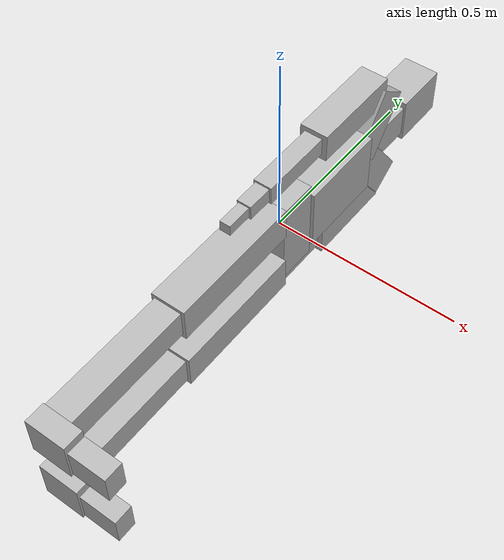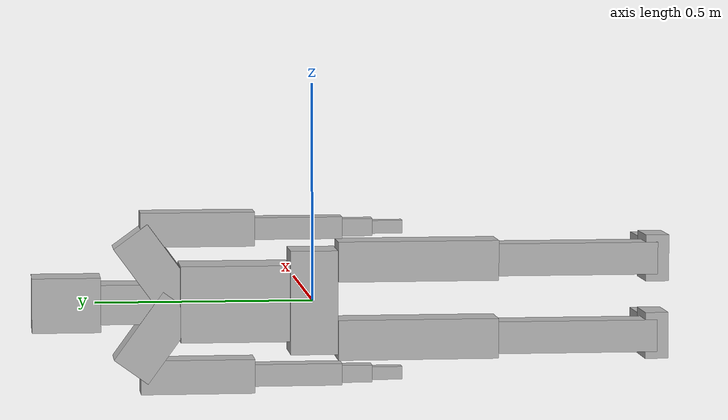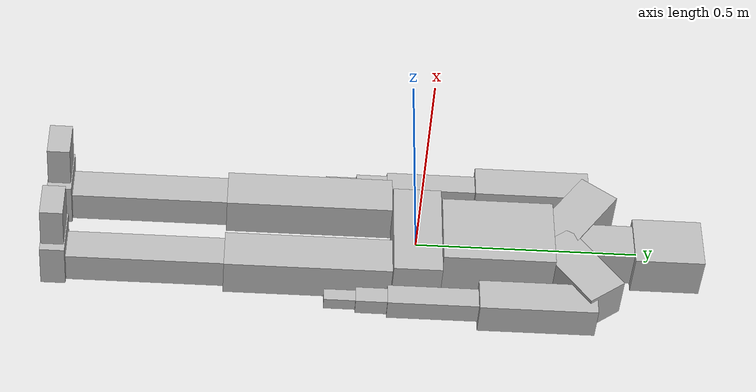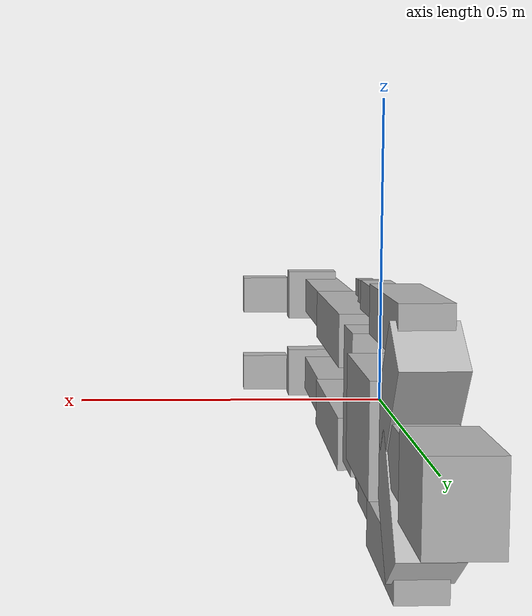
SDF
<?xml version="1.0" ?>
<sdf version="1.4">

    <model name="human_model">
        <link name="h_pelvis">
            <self_collide>true</self_collide>
            <pose>0 0 0 0 0 0</pose>
            <inertial>
                <mass>5.6154</mass>
            </inertial>
            <visual name="visual">
                <pose>0.0 0 0.0 0 0 0</pose>
                <geometry>
                    <box>
                        <size>0.1088 0.1088 0.23936</size>
                    </box>
                </geometry>
            </visual>
            <collision name="collision">
                <pose>0.0 0 0.0 0 0 0</pose>
                <geometry>
                    <box>
                        <size>0.1088 0.1088 0.23936</size>
                    </box>
                </geometry>
            </collision>
        </link>

        <!-- Left Leg -->
        <link name="h_thigh_left">
            <self_collide>true</self_collide>
            <pose>0.01649408 -0.05774016 -0.09072832 0.0 0.0 0.0</pose>
            <inertial>
                <mass>6.5709</mass>
            </inertial>
            <visual name="visual">
                <pose>0.0 -0.18605 0.0 0.0 0.0 0.0</pose>
                <geometry>
                    <box>
                        <size>0.093025 0.3721 0.093025</size>
                    </box>
                </geometry>
            </visual>
            <collision name="collision">
                <pose>0.0 -0.18605 0.0 0.0 0.0 0.0</pose>
                <geometry>
                    <box>
                        <size>0.093025 0.3721 0.093025</size>
                    </box>
                </geometry>
            </collision>
        </link>

        <link name="h_shin_left">
            <self_collide>true</self_collide>
            <pose>0.01649408 -0.42984016 -0.09072832 0.0 0.0 0.0</pose>
            <inertial>
                <mass>1.7738</mass>
            </inertial>
            <visual name="visual">
                <pose>0.0 -0.18685 0.0 0.0 0.0 0.0</pose>
                <geometry>
                    <box>
                        <size>0.07474 0.3737 0.07474</size>
                    </box>
                </geometry>
            </visual>
            <collision name="collision">
                <pose>0.0 -0.18685 0.0 0.0 0.0 0.0</pose>
                <geometry>
                    <box>
                        <size>0.07474 0.3737 0.07474</size>
                    </box>
                </geometry>
            </collision>
        </link>

        <link name="h_heel_left">
            <self_collide>true</self_collide>
            <pose>0.01649408 -0.80354016 -0.09072832 0.0 0.0 0.0</pose>
            <inertial>
                <mass>0.5831</mass>
            </inertial>
            <visual name="visual">
                <pose>0.0216 0.0 0.0 0.0 0.0 0.0</pose>
                <geometry>
                    <box>
                        <size>0.1080 0.0540 0.1080</size>
                    </box>
                </geometry>
            </visual>
            <collision name="collision">
                <pose>0.0216 0.0 0.0 0.0 0.0 0.0</pose>
                <geometry>
                    <box>
                        <size>0.1080 0.0540 0.1080</size>
                    </box>
                </geometry>
            </collision>
        </link>

        <link name="h_toe_left">
            <self_collide>true</self_collide>
            <pose>0.12649408 -0.80354016 -0.09072832 0.0 0.0 0.0</pose>
            <inertial>
                <mass>0.50</mass>
            </inertial>
            <visual name="visual">
                <pose>0.02 0.0 0.0 0.0 0.0 0.0</pose>
                <geometry>
                    <box>
                        <size>0.1000 0.0500 0.0800</size>
                    </box>
                </geometry>
            </visual>
            <collision name="collision">
                <pose>0.02 0.0 0.0 0.0 0.0 0.0</pose>
                <geometry>
                    <box>
                        <size>0.1000 0.0500 0.0800</size>
                    </box>
                </geometry>
            </collision>
        </link>

        <!-- Right Leg -->
        <link name="h_thigh_right">
            <self_collide>true</self_collide>
            <pose>0.01649408 -0.05774016 0.09072832 0.0 0.0 0.0</pose>
            <inertial>
                <mass>6.5709</mass>
            </inertial>
            <visual name="visual">
                <pose>0.0 -0.18605 0.0 0.0 0.0 0.0</pose>
                <geometry>
                    <box>
                        <size>0.093025 0.3721 0.093025</size>
                    </box>
                </geometry>
            </visual>
            <collision name="collision">
                <pose>0.0 -0.18605 0.0 0.0 0.0 0.0</pose>
                <geometry>
                    <box>
                        <size>0.093025 0.3721 0.093025</size>
                    </box>
                </geometry>
            </collision>
        </link>

        <link name="h_shin_right">
            <self_collide>true</self_collide>
            <pose>0.01649408 -0.42984016 0.09072832 0.0 0.0 0.0</pose>
            <inertial>
                <mass>1.7738</mass>
            </inertial>
            <visual name="visual">
                <pose>0.0 -0.18685 0.0 0.0 0.0 0.0</pose>
                <geometry>
                    <box>
                        <size>0.07474 0.3737 0.07474</size>
                    </box>
                </geometry>
            </visual>
            <collision name="collision">
                <pose>0.0 -0.18685 0.0 0.0 0.0 0.0</pose>
                <geometry>
                    <box>
                        <size>0.07474 0.3737 0.07474</size>
                    </box>
                </geometry>
            </collision>
        </link>

        <link name="h_heel_right">
            <self_collide>true</self_collide>
            <pose>0.01649408 -0.80354016 0.09072832 0.0 0.0 0.0</pose>
            <inertial>
                <mass>0.5831</mass>
            </inertial>
            <visual name="visual">
                <pose>0.0216 0.0 0.0 0.0 0.0 0.0</pose>
                <geometry>
                    <box>
                        <size>0.1080 0.0540 0.1080</size>
                    </box>
                </geometry>
            </visual>
            <collision name="collision">
                <pose>0.0216 0.0 0.0 0.0 0.0 0.0</pose>
                <geometry>
                    <box>
                        <size>0.1080 0.0540 0.1080</size>
                    </box>
                </geometry>
            </collision>
        </link>

        <link name="h_toe_right">
            <self_collide>true</self_collide>
            <pose>0.12649408 -0.80354016 0.09072832 0.0 0.0 0.0</pose>
            <inertial>
                <mass>0.50</mass>
            </inertial>
            <visual name="visual">
                <pose>0.02 0.0 0.0 0.0 0.0 0.0</pose>
                <geometry>
                    <box>
                        <size>0.1000 0.0500 0.0800</size>
                    </box>
                </geometry>
            </visual>
            <collision name="collision">
                <pose>0.02 0.0 0.0 0.0 0.0 0.0</pose>
                <geometry>
                    <box>
                        <size>0.1000 0.0500 0.0800</size>
                    </box>
                </geometry>
            </collision>
        </link>

        <!-- Upper link -->
        <link name="h_abdomen">
            <self_collide>true</self_collide>
            <pose>0.0 0.0562 0.0 0.0 0.0 0.0</pose>
            <inertial>
                <mass>4.1846</mass>
            </inertial>
            <visual name="visual">
                <pose>0.0 0.12535 0.0 0.0 0.0 0.0</pose>
                <geometry>
                    <box>
                        <size>0.12535 0.2507 0.17549</size>
                    </box>
                </geometry>
            </visual>
            <collision name="collision">
                <pose>0.0 0.12535 0.0 0.0 0.0 0.0</pose>
                <geometry>
                    <box>
                        <size>0.12535 0.2507 0.17549</size>
                    </box>
                </geometry>
            </collision>
        </link>

        <link name="h_spine">
            <self_collide>true</self_collide>
            <pose>0.0 0.3069 0.0 0.0 0.0 0.0</pose>
            <inertial>
                <mass>4.8608</mass>
            </inertial>
            <visual name="visual">
                <pose>0.0 0.0908 0.0 0.0 0.0 0.0</pose>
                <geometry>
                    <box>
                        <size>0.0908 0.1816 0.0908</size>
                    </box>
                </geometry>
            </visual>
            <collision name="collision">
                <pose>0.0 0.0908 0.0 0.0 0.0 0.0</pose>
                <geometry>
                    <box>
                        <size>0.0908 0.1816 0.0908</size>
                    </box>
                </geometry>
            </collision>
        </link>

        <link name="h_head">
            <self_collide>true</self_collide>
            <pose>0.0 0.4885 0.0 0.0 0.0 0.0</pose>
            <inertial>
                <mass>3.92</mass>
            </inertial>
            <visual name="visual">
                <pose>0.0 0.07825 0.0 0.0 0.0 0.0</pose>
                <geometry>
                    <box>
                        <size>0.101725 0.1565 0.1252</size>
                    </box>
                </geometry>
            </visual>
            <collision name="collision">
                <pose>0.0 0.07825 0.0 0.0 0.0 0.0</pose>
                <geometry>
                    <box>
                        <size>0.101725 0.1565 0.1252</size>
                    </box>
                </geometry>
            </collision>
        </link>

        <!-- Left Arm -->
        <link name="h_scapula_left">
            <self_collide>true</self_collide>
            <pose>0.0 0.3069 0.0 -0.9423 0.0 0.0</pose>
            <inertial>
                <mass>2.6264</mass>
            </inertial>
            <visual name="visual">
                <pose>0.0 0.09615 0.0 0.0 0.0 0.0</pose>
                <geometry>
                    <box>
                        <size>0.09615 0.1923 0.09615</size>
                    </box>
                </geometry>
            </visual>
            <collision name="collision">
                <pose>0.0 0.09615 0.0 0.0 0.0 0.0</pose>
                <geometry>
                    <box>
                        <size>0.09615 0.1923 0.09615</size>
                    </box>
                </geometry>
            </collision>
        </link>

        <link name="h_bicep_left_midjoint">
            <self_collide>true</self_collide>
            <pose>0.0 0.397146 -0.169809 0.0 0.0 0.0</pose>
            <collision name="collision">
                <pose>0.0 -0.1308 0.0 0.0 0.0 0.0</pose>
                <geometry>
                    <box>
                        <size>0.07848 0.2616 0.07848</size>
                    </box>
                </geometry>
            </collision>
        </link>

        <link name="h_bicep_left">
            <self_collide>true</self_collide>
            <pose>0.0 0.397146 -0.169809 0.0 0.0 0.0</pose>
            <inertial>
                <mass>1.6219</mass>
            </inertial>
            <visual name="visual">
                <pose>0.0 -0.1308 0.0 0.0 0.0 0.0</pose>
                <geometry>
                    <box>
                        <size>0.07848 0.2616 0.07848</size>
                    </box>
                </geometry>
            </visual>
            <collision name="collision">
                <pose>0.0 -0.1308 0.0 0.0 0.0 0.0</pose>
                <geometry>
                    <box>
                        <size>0.07848 0.2616 0.07848</size>
                    </box>
                </geometry>
            </collision>
        </link>

        <link name="h_forearm_left">
            <self_collide>true</self_collide>
            <pose>0.0 0.135546 -0.169809 0.0 0.0 0.0</pose>
            <inertial>
                <mass>0.6909</mass>
            </inertial>
            <visual name="visual">
                <pose>0.0 -0.1012 0.0 0.0 0.0 0.0</pose>
                <geometry>
                    <box>
                        <size>0.0506 0.2024 0.0506</size>
                    </box>
                </geometry>
            </visual>
            <collision name="collision">
                <pose>0.0 -0.1012 0.0 0.0 0.0 0.0</pose>
                <geometry>
                    <box>
                        <size>0.0506 0.2024 0.0506</size>
                    </box>
                </geometry>
            </collision>
        </link>

        <link name="h_hand_left">
            <self_collide>true</self_collide>
            <pose>0.0 -0.066854 -0.169809 0.0 0.0 0.0</pose>
            <inertial>
                <mass>0.175</mass>
            </inertial>
            <visual name="visual">
                <pose>0.0 -0.035 0.0 0.0 0.0 0.0</pose>
                <geometry>
                    <box>
                        <size>0.04 0.07 0.04</size>
                    </box>
                </geometry>
            </visual>
            <collision name="collision">
                <pose>0.0 -0.035 0.0 0.0 0.0 0.0</pose>
                <geometry>
                    <box>
                        <size>0.04 0.07 0.04</size>
                    </box>
                </geometry>
            </collision>
        </link>

        <link name="h_hand_left2">
            <self_collide>true</self_collide>
            <pose>0.0 -0.137 -0.169809 0.0 0.0 0.0</pose>
            <inertial>
                <mass>0.12</mass>
            </inertial>
            <visual name="visual">
                <pose>0.0 -0.035 0.0 0.0 0.0 0.0</pose>
                <geometry>
                    <box>
                        <size>0.03 0.07 0.03</size>
                    </box>
                </geometry>
            </visual>
            <collision name="collision">
                <pose>0.0 -0.035 0.0 0.0 0.0 0.0</pose>
                <geometry>
                    <box>
                        <size>0.03 0.07 0.03</size>
                    </box>
                </geometry>
            </collision>
        </link>

        <!-- Right Arm -->
        <link name="h_scapula_right">
            <self_collide>true</self_collide>
            <pose>0.0 0.3069 0.0 0.9423 0.0 0.0</pose>
            <inertial>
                <mass>2.6264</mass>
            </inertial>
            <visual name="visual">
                <pose>0.0 0.09615 0.0 0.0 0.0 0.0</pose>
                <geometry>
                    <box>
                        <size>0.09615 0.1923 0.09615</size>
                    </box>
                </geometry>
            </visual>
            <collision name="collision">
                <pose>0.0 0.09615 0.0 0.0 0.0 0.0</pose>
                <geometry>
                    <box>
                        <size>0.09615 0.1923 0.09615</size>
                    </box>
                </geometry>
            </collision>
        </link>

        <link name="h_bicep_right_midjoint">
            <self_collide>true</self_collide>
            <pose>0.0 0.397146 0.169809 0.0 0.0 0.0</pose>
            <collision name="collision">
                <pose>0.0 -0.1308 0.0 0.0 0.0 0.0</pose>
                <geometry>
                    <box>
                        <size>0.07848 0.2616 0.07848</size>
                    </box>
                </geometry>
            </collision>
        </link>

        <link name="h_bicep_right">
            <self_collide>true</self_collide>
            <pose>0.0 0.397146 0.169809 0.0 0.0 0.0</pose>
            <inertial>
                <mass>1.6219</mass>
            </inertial>
            <visual name="visual">
                <pose>0.0 -0.1308 0.0 0.0 0.0 0.0</pose>
                <geometry>
                    <box>
                        <size>0.07848 0.2616 0.07848</size>
                    </box>
                </geometry>
            </visual>
            <collision name="collision">
                <pose>0.0 -0.1308 0.0 0.0 0.0 0.0</pose>
                <geometry>
                    <box>
                        <size>0.07848 0.2616 0.07848</size>
                    </box>
                </geometry>
            </collision>
        </link>

        <link name="h_forearm_right">
            <self_collide>true</self_collide>
            <pose>0.0 0.135546 0.169809 0.0 0.0 0.0</pose>
            <inertial>
                <mass>0.6909</mass>
            </inertial>
            <visual name="visual">
                <pose>0.0 -0.1012 0.0 0.0 0.0 0.0</pose>
                <geometry>
                    <box>
                        <size>0.0506 0.2024 0.0506</size>
                    </box>
                </geometry>
            </visual>
            <collision name="collision">
                <pose>0.0 -0.1012 0.0 0.0 0.0 0.0</pose>
                <geometry>
                    <box>
                        <size>0.0506 0.2024 0.0506</size>
                    </box>
                </geometry>
            </collision>
        </link>

        <link name="h_hand_right">
            <self_collide>true</self_collide>
            <pose>0.0 -0.066854 0.169809 0.0 0.0 0.0</pose>
            <inertial>
                <mass>0.175</mass>
            </inertial>
            <visual name="visual">
                <pose>0.0 -0.035 0.0 0.0 0.0 0.0</pose>
                <geometry>
                    <box>
                        <size>0.04 0.07 0.04</size>
                    </box>
                </geometry>
            </visual>
            <collision name="collision">
                <pose>0.0 -0.035 0.0 0.0 0.0 0.0</pose>
                <geometry>
                    <box>
                        <size>0.04 0.07 0.04</size>
                    </box>
                </geometry>
            </collision>
        </link>

        <link name="h_hand_right2">
            <self_collide>true</self_collide>
            <pose>0.0 -0.137 0.169809 0.0 0.0 0.0</pose>
            <inertial>
                <mass>0.12</mass>
            </inertial>
            <visual name="visual">
                <pose>0.0 -0.035 0.0 0.0 0.0 0.0</pose>
                <geometry>
                    <box>
                        <size>0.03 0.07 0.03</size>
                    </box>
                </geometry>
            </visual>
            <collision name="collision">
                <pose>0.0 -0.035 0.0 0.0 0.0 0.0</pose>
                <geometry>
                    <box>
                        <size>0.03 0.07 0.03</size>
                    </box>
                </geometry>
            </collision>
        </link>

        <!-- JOINT: Pelvis -->
        <joint type="ball" name="j_pelvis">
            <parent>world</parent>
            <child>h_head</child>
        </joint>

        <!-- JOINT: Left Leg -->
        <joint type="ball" name="j_thigh_left">
            <pose>0.0 0.0 0.0 0.0 0.0 0.0</pose>
            <parent>h_pelvis</parent>
            <child>h_thigh_left</child>

        </joint>

        <joint type="revolute" name="j_shin_left">
            <pose>0.0 0.0 0.0 0.0 0.0 0.0</pose>
            <parent>h_thigh_left</parent>
            <child>h_shin_left</child>
            <axis>
                <xyz>0.0 0.0 1.0</xyz>
                <limit>
                    <lower>-2.6416</lower>
                    <upper>0</upper>
                </limit>
            </axis>
        </joint>

        <joint type="revolute2" name="j_heel_left">
            <pose>0.0 0.0 0.0 0.0 0.0 0.0</pose>
            <parent>h_shin_left</parent>
            <child>h_heel_left</child>
            <axis>
                <xyz>0.0 0.0 1.0</xyz>
                <limit>
                    <lower>-1.136</lower>
                    <upper>0.350</upper>
                </limit>
            </axis>
            <axis2>
                <xyz>0.0 1.0 0.0</xyz>
                <limit>
                    <lower>-0.2854</lower>
                    <upper>0.3854</upper>
                </limit>
            </axis2>
        </joint>

        <joint type="revolute" name="j_toe_left">
            <pose>0.0 0.0 0.0 0.0 0.0 0.0</pose>
            <parent>h_heel_left</parent>
            <child>h_toe_left</child>
            <axis>
                <xyz>0.0 0.0 1.0</xyz>
                <limit>
                    <lower>-0.4236</lower>
                    <upper>0.5536</upper>
                </limit>
            </axis>
        </joint>

        <!-- JOINT: Right Leg -->
        <joint type="ball" name="j_thigh_right">
            <pose>0.0 0.0 0.0 0.0 0.0 0.0</pose>
            <parent>h_pelvis</parent>
            <child>h_thigh_right</child>
        </joint>

        <joint type="revolute" name="j_shin_right">
            <pose>0.0 0.0 0.0 0.0 0.0 0.0</pose>
            <parent>h_thigh_right</parent>
            <child>h_shin_right</child>
            <axis>
                <xyz>0.0 0.0 1.0</xyz>
                <limit>
                    <lower>-2.6416</lower>
                    <upper>0</upper>
                </limit>
            </axis>
        </joint>

        <joint type="revolute2" name="j_heel_right">
            <pose>0.0 0.0 0.0 0.0 0.0 0.0</pose>
            <parent>h_shin_right</parent>
            <child>h_heel_right</child>
            <axis>
                <xyz>0.0 0.0 1.0</xyz>
                <limit>
                    <lower>-1.136</lower>
                    <upper>0.350</upper>
                </limit>
            </axis>
            <axis2>
                <xyz>0.0 1.0 0.0</xyz>
                <limit>
                    <lower>-0.2854</lower>
                    <upper>0.3854</upper>
                </limit>
            </axis2>
        </joint>

        <joint type="revolute" name="j_toe_right">
            <pose>0.0 0.0 0.0 0.0 0.0 0.0</pose>
            <parent>h_heel_right</parent>
            <child>h_toe_right</child>
            <axis>
                <xyz>0.0 0.0 1.0</xyz>
                <limit>
                    <lower>-0.4236</lower>
                    <upper>0.5536</upper>
                </limit>
            </axis>
        </joint>

        <joint type="revolute2" name="j_abdomen">
            <pose>0.0 0.0 0.0 0.0 0.0 0.0</pose>
            <parent>h_pelvis</parent>
            <child>h_abdomen</child>
            <axis>
                <xyz>1.0 0.0 0.0</xyz>
                <limit>
                    <lower>-0.5</lower>
                    <upper>0.5</upper>
                </limit>
            </axis>
            <axis2>
                <xyz>0.0 0.0 1.0</xyz>
                <limit>
                    <lower>-0.85</lower>
                    <upper>0.5</upper>
                </limit>
            </axis2>
        </joint>

        <joint type="revolute" name="j_spine">
            <pose>0.0 0.0 0.0 0.0 0.0 0.0</pose>
            <parent>h_abdomen</parent>
            <child>h_spine</child>
            <axis>
                <xyz>0.0 1.0 0.0</xyz>
                <limit>
                    <lower>-1</lower>
                    <upper>1</upper>
                </limit>
            </axis>
        </joint>

        <joint type="revolute2" name="j_head">
            <pose>0.0 0.0 0.0 0.0 0.0 0.0</pose>
            <parent>h_spine</parent>
            <child>h_head</child>
            <axis>
                <xyz>0.0 0.0 1.0</xyz>
                <limit>
                    <lower>-1.0472</lower>
                    <upper>1.0472</upper>
                </limit>
            </axis>
            <axis2>
                <xyz>1.0 0.0 0.0</xyz>
                <limit>
                    <lower>-1.0472</lower>
                    <upper>1.0472</upper>
                </limit>
            </axis2>
        </joint>

        <!-- JOINT: Left Arm -->
        <joint type="revolute" name="j_scapula_left">
            <pose>0.0 0.0 0.0 0.0 0.0 0.0</pose>
            <parent>h_spine</parent>
            <child>h_scapula_left</child>
            <axis>
                <xyz>1.0 0.0 0.0</xyz>
                <limit>
                    <lower>-0.2491</lower>
                    <upper>0.2491</upper>
                </limit>
            </axis>
        </joint>

        <joint type="ball" name="j_bicep_left">
            <pose>0.0 0.0 0.0 -1.2423 0.0 0.0</pose>
            <parent>h_scapula_left</parent>
            <child>h_bicep_left_midjoint</child>
        </joint>

        <joint type="revolute" name="j_becip_left_roll">
            <pose>0.0 0.0 0.0 0.0 0.0 0.0</pose>
            <parent>h_bicep_left_midjoint</parent>
            <child>h_bicep_left</child>
            <axis>
                <xyz>0.0 1.0 0.0</xyz>
                <limit>
                    <lower>-1.3</lower>
                    <upper>0.7</upper>
                </limit>
            </axis>
        </joint>

        <joint type="revolute2" name="j_forearm_left">
            <pose>0.0 0.0 0.0 0.0 0.0 0.0</pose>
            <parent>h_bicep_left</parent>
            <child>h_forearm_left</child>
            <axis>
                <xyz>0.0 0.0 1.0</xyz>
                <limit>
                    <lower>0</lower>
                    <upper>2.7</upper>
                </limit>
            </axis>
            <axis2>
                <xyz>0.0 1.0 0.0</xyz>
                <limit>
                    <lower>-3</lower>
                    <upper>0</upper>
                </limit>
            </axis2>
        </joint>

        <joint type="revolute2" name="j_wrist_left">
            <pose>0.0 0.0 0.0 0.0 0.0 0.0</pose>
            <parent>h_forearm_left</parent>
            <child>h_hand_left</child>
            <axis>
                <xyz>0.0 0.0 1.0</xyz>
                <limit>
                    <lower>-1</lower>
                    <upper>1</upper>
                </limit>
            </axis>
            <axis2>
                <xyz>1.0 0.0 0.0</xyz>
                <limit>
                    <lower>-0.5</lower>
                    <upper>0.5</upper>
                </limit>
            </axis2>
        </joint>

        <joint type="revolute" name="j_hand_left">
            <pose>0.0 0.0 0.0 0.0 0.0 0.0</pose>
            <parent>h_hand_left</parent>
            <child>h_hand_left2</child>
            <axis>
                <xyz>0 0.0 1.0</xyz>
                <limit>
                    <lower>-0.5</lower>
                    <upper>01.6</upper>
                </limit>
            </axis>
        </joint>

        <!-- JOINT: Right Arm -->
        <joint type="revolute" name="j_scapula_right">
            <pose>0.0 0.0 0.0 0.0 0.0 0.0</pose>
            <parent>h_spine</parent>
            <child>h_scapula_right</child>
            <axis>
                <xyz>1.0 0.0 0.0</xyz>
                <limit>
                    <lower>-0.2491</lower>
                    <upper>0.2491</upper>
                </limit>
            </axis>
        </joint>

        <joint type="ball" name="j_bicep_right">
            <pose>0.0 0.0 0.0 1.2423 0.0 0.0</pose>
            <parent>h_scapula_right</parent>
            <child>h_bicep_right_midjoint</child>
        </joint>

        <joint type="revolute" name="j_becip_right_roll">
            <pose>0.0 0.0 0.0 0.0 0.0 0.0</pose>
            <parent>h_bicep_right_midjoint</parent>
            <child>h_bicep_right</child>
            <axis>
                <xyz>0.0 1.0 0.0</xyz>
                <limit>
                    <lower>-0.7</lower>
                    <upper>1.3</upper>
                </limit>
            </axis>
        </joint>

        <joint type="revolute2" name="j_forearm_right">
            <pose>0.0 0.0 0.0 0.0 0.0 0.0</pose>
            <parent>h_bicep_right</parent>
            <child>h_forearm_right</child>
            <axis>
                <xyz>0.0 0.0 1.0</xyz>
                <limit>
                    <lower>0</lower>
                    <upper>2.7</upper>
                </limit>
            </axis>
            <axis2>
                <xyz>0.0 1.0 0.0</xyz>
                <limit>
                    <lower>0</lower>
                    <upper>3</upper>
                </limit>
            </axis2>
        </joint>

        <joint type="revolute2" name="j_wrist_right">
            <pose>0.0 0.0 0.0 0.0 0.0 0.0</pose>
            <parent>h_forearm_right</parent>
            <child>h_hand_right</child>
            <axis>
                <xyz>0.0 0.0 1.0</xyz>
                <limit>
                    <lower>-1.2</lower>
                    <upper>1.5</upper>
                </limit>
            </axis>
            <axis2>
                <xyz>1.0 0.0 0.0</xyz>
                <limit>
                    <lower>-0.5</lower>
                    <upper>0.5</upper>
                </limit>
            </axis2>
        </joint>

        <joint type="revolute" name="j_hand_right">
            <pose>0.0 0.0 0.0 0.0 0.0 0.0</pose>
            <parent>h_hand_right</parent>
            <child>h_hand_right2</child>
            <axis>
                <xyz>0.0 0.0 1.0</xyz>
                <limit>
                    <lower>-0.5</lower>
                    <upper>01.6</upper>
                </limit>
            </axis>
        </joint>

    </model>

</sdf>
